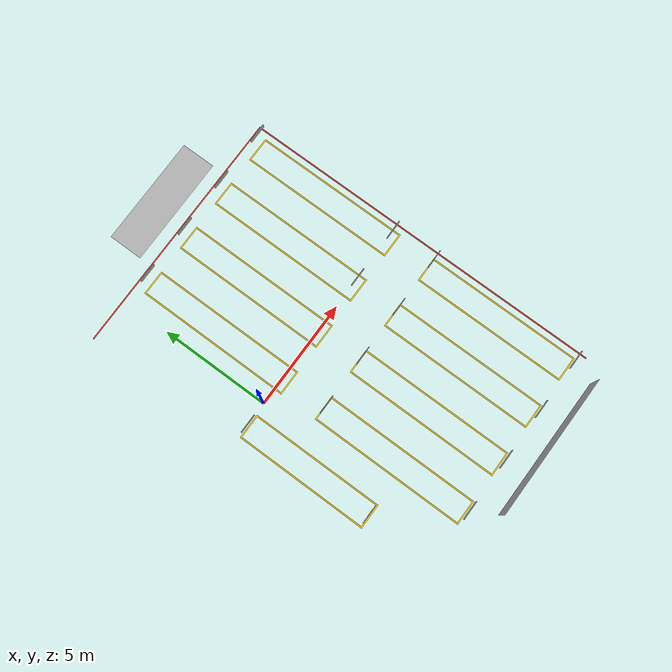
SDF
<?xml version="1.0"?>
<sdf version="1.6">
  <model name="zone_c_layout">
    <static>true</static>
    <link name="link">
      <visual name="visual">
        <cast_shadows>false</cast_shadows>
        <geometry><mesh><uri>model://zone_c_layout/meshes/mesh.dae</uri></mesh></geometry>
      </visual>
    </link>
  </model>
</sdf>
